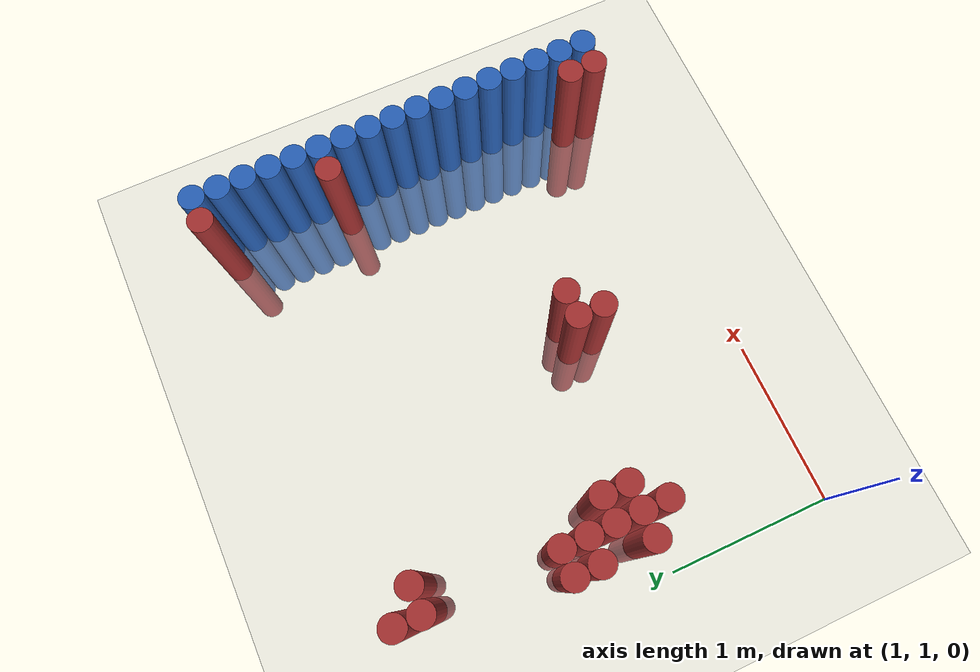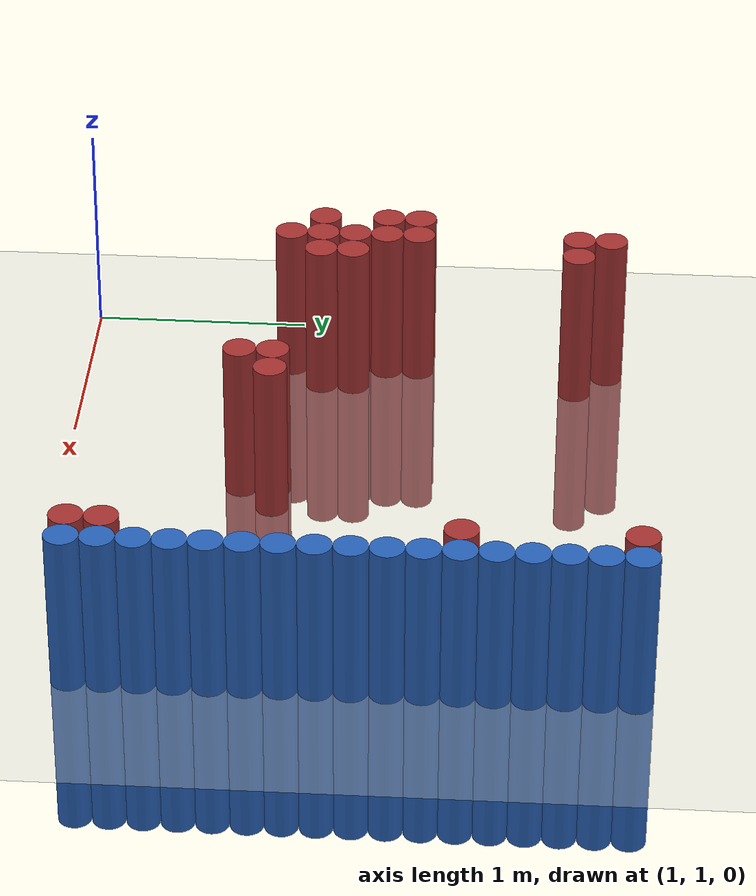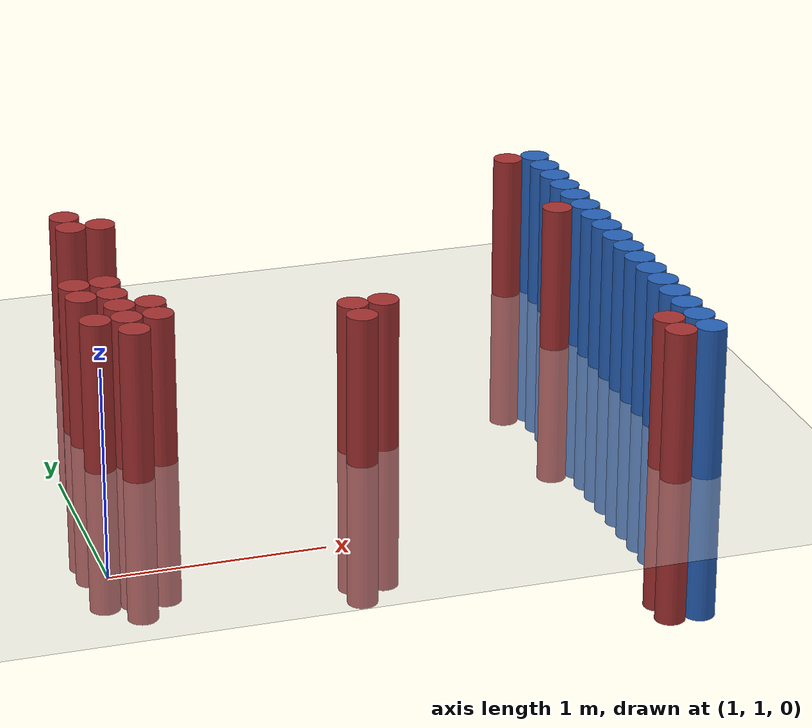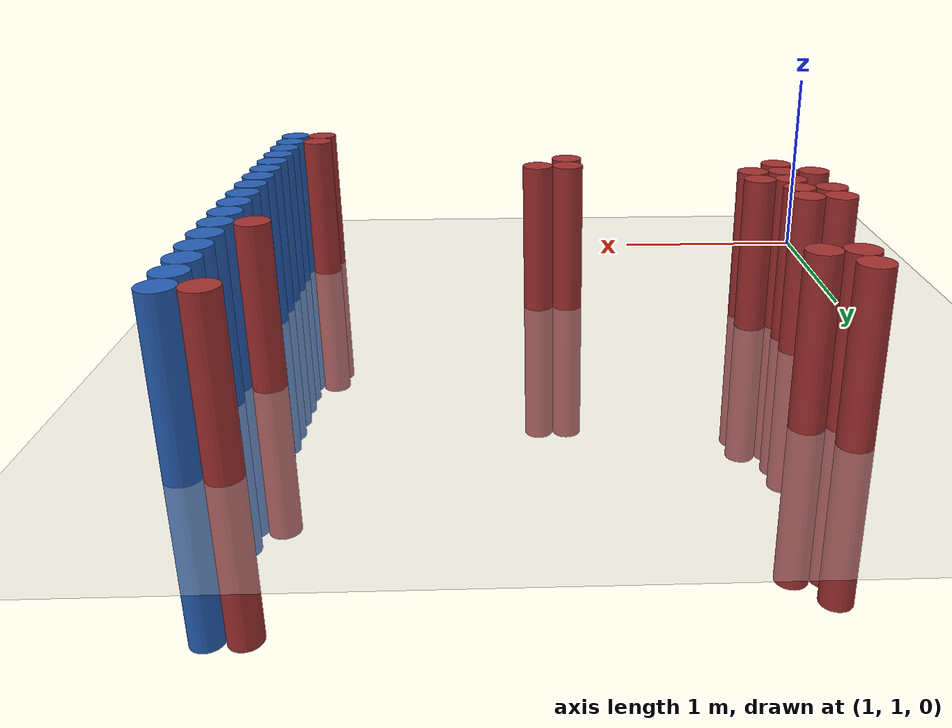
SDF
<sdf version="1.6">
 <world name="default">
  <model name="ground_plane">
   <static>1</static>
   <link name="link">
    <collision name="collision">
     <geometry><plane><normal>0 0 1</normal><size>100 100</size></plane></geometry>
     <surface><friction><ode><mu>100</mu><mu2>50</mu2></ode></friction></surface>
    </collision>
    <visual name="visual">
     <cast_shadows>0</cast_shadows>
     <geometry><plane><normal>0 0 1</normal><size>100 100</size></plane></geometry>
     <material>
      <script><uri>file://media/materials/scripts/gazebo.material</uri><name>Gazebo/Grey</name></script>
     </material>
    </visual>
   </link>
  </model>
  <model name="unit_cylinder_132">
   <static>1</static>
   <pose>3.925000 1.375000 0.000000 0.000000 0.000000 0.000000</pose>
   <link name="link">
    <inertial>
     <mass>1</mass>
     <inertia><ixx>0.145833</ixx><ixy>0</ixy><ixz>0</ixz><iyy>0.145833</iyy><iyz>0</iyz><izz>0.125</izz></inertia>
    </inertial>
    <collision name="collision">
     <geometry><cylinder><radius>0.075000</radius><length>1.5</length></cylinder></geometry>
    </collision>
    <visual name="visual">
     <geometry><cylinder><radius>0.075000</radius><length>1.5</length></cylinder></geometry>
     <material>
      <ambient>0.152000 0.379000 0.720000 1</ambient>
      <diffuse>0.152000 0.379000 0.720000 1</diffuse>
     </material>
     <material>
      <script><name>Gazebo/Grey</name><uri>file://media/materials/scripts/gazebo.material</uri></script>
     </material>
    </visual>
   </link>
  </model>
  <model name="unit_cylinder_134">
   <static>1</static>
   <pose>3.925000 1.525000 0.000000 0.000000 0.000000 0.000000</pose>
   <link name="link">
    <inertial>
     <mass>1</mass>
     <inertia><ixx>0.145833</ixx><ixy>0</ixy><ixz>0</ixz><iyy>0.145833</iyy><iyz>0</iyz><izz>0.125</izz></inertia>
    </inertial>
    <collision name="collision">
     <geometry><cylinder><radius>0.075000</radius><length>1.5</length></cylinder></geometry>
    </collision>
    <visual name="visual">
     <geometry><cylinder><radius>0.075000</radius><length>1.5</length></cylinder></geometry>
     <material>
      <ambient>0.152000 0.379000 0.720000 1</ambient>
      <diffuse>0.152000 0.379000 0.720000 1</diffuse>
     </material>
     <material>
      <script><name>Gazebo/Grey</name><uri>file://media/materials/scripts/gazebo.material</uri></script>
     </material>
    </visual>
   </link>
  </model>
  <model name="unit_cylinder_136">
   <static>1</static>
   <pose>3.925000 1.675000 0.000000 0.000000 0.000000 0.000000</pose>
   <link name="link">
    <inertial>
     <mass>1</mass>
     <inertia><ixx>0.145833</ixx><ixy>0</ixy><ixz>0</ixz><iyy>0.145833</iyy><iyz>0</iyz><izz>0.125</izz></inertia>
    </inertial>
    <collision name="collision">
     <geometry><cylinder><radius>0.075000</radius><length>1.5</length></cylinder></geometry>
    </collision>
    <visual name="visual">
     <geometry><cylinder><radius>0.075000</radius><length>1.5</length></cylinder></geometry>
     <material>
      <ambient>0.152000 0.379000 0.720000 1</ambient>
      <diffuse>0.152000 0.379000 0.720000 1</diffuse>
     </material>
     <material>
      <script><name>Gazebo/Grey</name><uri>file://media/materials/scripts/gazebo.material</uri></script>
     </material>
    </visual>
   </link>
  </model>
  <model name="unit_cylinder_138">
   <static>1</static>
   <pose>3.925000 1.825000 0.000000 0.000000 0.000000 0.000000</pose>
   <link name="link">
    <inertial>
     <mass>1</mass>
     <inertia><ixx>0.145833</ixx><ixy>0</ixy><ixz>0</ixz><iyy>0.145833</iyy><iyz>0</iyz><izz>0.125</izz></inertia>
    </inertial>
    <collision name="collision">
     <geometry><cylinder><radius>0.075000</radius><length>1.5</length></cylinder></geometry>
    </collision>
    <visual name="visual">
     <geometry><cylinder><radius>0.075000</radius><length>1.5</length></cylinder></geometry>
     <material>
      <ambient>0.152000 0.379000 0.720000 1</ambient>
      <diffuse>0.152000 0.379000 0.720000 1</diffuse>
     </material>
     <material>
      <script><name>Gazebo/Grey</name><uri>file://media/materials/scripts/gazebo.material</uri></script>
     </material>
    </visual>
   </link>
  </model>
  <model name="unit_cylinder_140">
   <static>1</static>
   <pose>3.925000 1.975000 0.000000 0.000000 0.000000 0.000000</pose>
   <link name="link">
    <inertial>
     <mass>1</mass>
     <inertia><ixx>0.145833</ixx><ixy>0</ixy><ixz>0</ixz><iyy>0.145833</iyy><iyz>0</iyz><izz>0.125</izz></inertia>
    </inertial>
    <collision name="collision">
     <geometry><cylinder><radius>0.075000</radius><length>1.5</length></cylinder></geometry>
    </collision>
    <visual name="visual">
     <geometry><cylinder><radius>0.075000</radius><length>1.5</length></cylinder></geometry>
     <material>
      <ambient>0.152000 0.379000 0.720000 1</ambient>
      <diffuse>0.152000 0.379000 0.720000 1</diffuse>
     </material>
     <material>
      <script><name>Gazebo/Grey</name><uri>file://media/materials/scripts/gazebo.material</uri></script>
     </material>
    </visual>
   </link>
  </model>
  <model name="unit_cylinder_142">
   <static>1</static>
   <pose>3.925000 2.125000 0.000000 0.000000 0.000000 0.000000</pose>
   <link name="link">
    <inertial>
     <mass>1</mass>
     <inertia><ixx>0.145833</ixx><ixy>0</ixy><ixz>0</ixz><iyy>0.145833</iyy><iyz>0</iyz><izz>0.125</izz></inertia>
    </inertial>
    <collision name="collision">
     <geometry><cylinder><radius>0.075000</radius><length>1.5</length></cylinder></geometry>
    </collision>
    <visual name="visual">
     <geometry><cylinder><radius>0.075000</radius><length>1.5</length></cylinder></geometry>
     <material>
      <ambient>0.152000 0.379000 0.720000 1</ambient>
      <diffuse>0.152000 0.379000 0.720000 1</diffuse>
     </material>
     <material>
      <script><name>Gazebo/Grey</name><uri>file://media/materials/scripts/gazebo.material</uri></script>
     </material>
    </visual>
   </link>
  </model>
  <model name="unit_cylinder_144">
   <static>1</static>
   <pose>3.925000 2.275000 0.000000 0.000000 0.000000 0.000000</pose>
   <link name="link">
    <inertial>
     <mass>1</mass>
     <inertia><ixx>0.145833</ixx><ixy>0</ixy><ixz>0</ixz><iyy>0.145833</iyy><iyz>0</iyz><izz>0.125</izz></inertia>
    </inertial>
    <collision name="collision">
     <geometry><cylinder><radius>0.075000</radius><length>1.5</length></cylinder></geometry>
    </collision>
    <visual name="visual">
     <geometry><cylinder><radius>0.075000</radius><length>1.5</length></cylinder></geometry>
     <material>
      <ambient>0.152000 0.379000 0.720000 1</ambient>
      <diffuse>0.152000 0.379000 0.720000 1</diffuse>
     </material>
     <material>
      <script><name>Gazebo/Grey</name><uri>file://media/materials/scripts/gazebo.material</uri></script>
     </material>
    </visual>
   </link>
  </model>
  <model name="unit_cylinder_146">
   <static>1</static>
   <pose>3.925000 2.425000 0.000000 0.000000 0.000000 0.000000</pose>
   <link name="link">
    <inertial>
     <mass>1</mass>
     <inertia><ixx>0.145833</ixx><ixy>0</ixy><ixz>0</ixz><iyy>0.145833</iyy><iyz>0</iyz><izz>0.125</izz></inertia>
    </inertial>
    <collision name="collision">
     <geometry><cylinder><radius>0.075000</radius><length>1.5</length></cylinder></geometry>
    </collision>
    <visual name="visual">
     <geometry><cylinder><radius>0.075000</radius><length>1.5</length></cylinder></geometry>
     <material>
      <ambient>0.152000 0.379000 0.720000 1</ambient>
      <diffuse>0.152000 0.379000 0.720000 1</diffuse>
     </material>
     <material>
      <script><name>Gazebo/Grey</name><uri>file://media/materials/scripts/gazebo.material</uri></script>
     </material>
    </visual>
   </link>
  </model>
  <model name="unit_cylinder_148">
   <static>1</static>
   <pose>3.925000 2.575000 0.000000 0.000000 0.000000 0.000000</pose>
   <link name="link">
    <inertial>
     <mass>1</mass>
     <inertia><ixx>0.145833</ixx><ixy>0</ixy><ixz>0</ixz><iyy>0.145833</iyy><iyz>0</iyz><izz>0.125</izz></inertia>
    </inertial>
    <collision name="collision">
     <geometry><cylinder><radius>0.075000</radius><length>1.5</length></cylinder></geometry>
    </collision>
    <visual name="visual">
     <geometry><cylinder><radius>0.075000</radius><length>1.5</length></cylinder></geometry>
     <material>
      <ambient>0.152000 0.379000 0.720000 1</ambient>
      <diffuse>0.152000 0.379000 0.720000 1</diffuse>
     </material>
     <material>
      <script><name>Gazebo/Grey</name><uri>file://media/materials/scripts/gazebo.material</uri></script>
     </material>
    </visual>
   </link>
  </model>
  <model name="unit_cylinder_150">
   <static>1</static>
   <pose>3.925000 2.725000 0.000000 0.000000 0.000000 0.000000</pose>
   <link name="link">
    <inertial>
     <mass>1</mass>
     <inertia><ixx>0.145833</ixx><ixy>0</ixy><ixz>0</ixz><iyy>0.145833</iyy><iyz>0</iyz><izz>0.125</izz></inertia>
    </inertial>
    <collision name="collision">
     <geometry><cylinder><radius>0.075000</radius><length>1.5</length></cylinder></geometry>
    </collision>
    <visual name="visual">
     <geometry><cylinder><radius>0.075000</radius><length>1.5</length></cylinder></geometry>
     <material>
      <ambient>0.152000 0.379000 0.720000 1</ambient>
      <diffuse>0.152000 0.379000 0.720000 1</diffuse>
     </material>
     <material>
      <script><name>Gazebo/Grey</name><uri>file://media/materials/scripts/gazebo.material</uri></script>
     </material>
    </visual>
   </link>
  </model>
  <model name="unit_cylinder_152">
   <static>1</static>
   <pose>3.925000 2.875000 0.000000 0.000000 0.000000 0.000000</pose>
   <link name="link">
    <inertial>
     <mass>1</mass>
     <inertia><ixx>0.145833</ixx><ixy>0</ixy><ixz>0</ixz><iyy>0.145833</iyy><iyz>0</iyz><izz>0.125</izz></inertia>
    </inertial>
    <collision name="collision">
     <geometry><cylinder><radius>0.075000</radius><length>1.5</length></cylinder></geometry>
    </collision>
    <visual name="visual">
     <geometry><cylinder><radius>0.075000</radius><length>1.5</length></cylinder></geometry>
     <material>
      <ambient>0.152000 0.379000 0.720000 1</ambient>
      <diffuse>0.152000 0.379000 0.720000 1</diffuse>
     </material>
     <material>
      <script><name>Gazebo/Grey</name><uri>file://media/materials/scripts/gazebo.material</uri></script>
     </material>
    </visual>
   </link>
  </model>
  <model name="unit_cylinder_154">
   <static>1</static>
   <pose>3.925000 3.025000 0.000000 0.000000 0.000000 0.000000</pose>
   <link name="link">
    <inertial>
     <mass>1</mass>
     <inertia><ixx>0.145833</ixx><ixy>0</ixy><ixz>0</ixz><iyy>0.145833</iyy><iyz>0</iyz><izz>0.125</izz></inertia>
    </inertial>
    <collision name="collision">
     <geometry><cylinder><radius>0.075000</radius><length>1.5</length></cylinder></geometry>
    </collision>
    <visual name="visual">
     <geometry><cylinder><radius>0.075000</radius><length>1.5</length></cylinder></geometry>
     <material>
      <ambient>0.152000 0.379000 0.720000 1</ambient>
      <diffuse>0.152000 0.379000 0.720000 1</diffuse>
     </material>
     <material>
      <script><name>Gazebo/Grey</name><uri>file://media/materials/scripts/gazebo.material</uri></script>
     </material>
    </visual>
   </link>
  </model>
  <model name="unit_cylinder_156">
   <static>1</static>
   <pose>3.925000 3.175000 0.000000 0.000000 0.000000 0.000000</pose>
   <link name="link">
    <inertial>
     <mass>1</mass>
     <inertia><ixx>0.145833</ixx><ixy>0</ixy><ixz>0</ixz><iyy>0.145833</iyy><iyz>0</iyz><izz>0.125</izz></inertia>
    </inertial>
    <collision name="collision">
     <geometry><cylinder><radius>0.075000</radius><length>1.5</length></cylinder></geometry>
    </collision>
    <visual name="visual">
     <geometry><cylinder><radius>0.075000</radius><length>1.5</length></cylinder></geometry>
     <material>
      <ambient>0.152000 0.379000 0.720000 1</ambient>
      <diffuse>0.152000 0.379000 0.720000 1</diffuse>
     </material>
     <material>
      <script><name>Gazebo/Grey</name><uri>file://media/materials/scripts/gazebo.material</uri></script>
     </material>
    </visual>
   </link>
  </model>
  <model name="unit_cylinder_158">
   <static>1</static>
   <pose>3.925000 3.325000 0.000000 0.000000 0.000000 0.000000</pose>
   <link name="link">
    <inertial>
     <mass>1</mass>
     <inertia><ixx>0.145833</ixx><ixy>0</ixy><ixz>0</ixz><iyy>0.145833</iyy><iyz>0</iyz><izz>0.125</izz></inertia>
    </inertial>
    <collision name="collision">
     <geometry><cylinder><radius>0.075000</radius><length>1.5</length></cylinder></geometry>
    </collision>
    <visual name="visual">
     <geometry><cylinder><radius>0.075000</radius><length>1.5</length></cylinder></geometry>
     <material>
      <ambient>0.152000 0.379000 0.720000 1</ambient>
      <diffuse>0.152000 0.379000 0.720000 1</diffuse>
     </material>
     <material>
      <script><name>Gazebo/Grey</name><uri>file://media/materials/scripts/gazebo.material</uri></script>
     </material>
    </visual>
   </link>
  </model>
  <model name="unit_cylinder_160">
   <static>1</static>
   <pose>3.925000 3.475000 0.000000 0.000000 0.000000 0.000000</pose>
   <link name="link">
    <inertial>
     <mass>1</mass>
     <inertia><ixx>0.145833</ixx><ixy>0</ixy><ixz>0</ixz><iyy>0.145833</iyy><iyz>0</iyz><izz>0.125</izz></inertia>
    </inertial>
    <collision name="collision">
     <geometry><cylinder><radius>0.075000</radius><length>1.5</length></cylinder></geometry>
    </collision>
    <visual name="visual">
     <geometry><cylinder><radius>0.075000</radius><length>1.5</length></cylinder></geometry>
     <material>
      <ambient>0.152000 0.379000 0.720000 1</ambient>
      <diffuse>0.152000 0.379000 0.720000 1</diffuse>
     </material>
     <material>
      <script><name>Gazebo/Grey</name><uri>file://media/materials/scripts/gazebo.material</uri></script>
     </material>
    </visual>
   </link>
  </model>
  <model name="unit_cylinder_162">
   <static>1</static>
   <pose>3.925000 3.625000 0.000000 0.000000 0.000000 0.000000</pose>
   <link name="link">
    <inertial>
     <mass>1</mass>
     <inertia><ixx>0.145833</ixx><ixy>0</ixy><ixz>0</ixz><iyy>0.145833</iyy><iyz>0</iyz><izz>0.125</izz></inertia>
    </inertial>
    <collision name="collision">
     <geometry><cylinder><radius>0.075000</radius><length>1.5</length></cylinder></geometry>
    </collision>
    <visual name="visual">
     <geometry><cylinder><radius>0.075000</radius><length>1.5</length></cylinder></geometry>
     <material>
      <ambient>0.152000 0.379000 0.720000 1</ambient>
      <diffuse>0.152000 0.379000 0.720000 1</diffuse>
     </material>
     <material>
      <script><name>Gazebo/Grey</name><uri>file://media/materials/scripts/gazebo.material</uri></script>
     </material>
    </visual>
   </link>
  </model>
  <model name="unit_cylinder_406">
   <static>1</static>
   <pose>1.225000 2.125000 0.000000 0.000000 0.000000 0.000000</pose>
   <link name="link">
    <inertial>
     <mass>1</mass>
     <inertia><ixx>0.145833</ixx><ixy>0</ixy><ixz>0</ixz><iyy>0.145833</iyy><iyz>0</iyz><izz>0.125</izz></inertia>
    </inertial>
    <collision name="collision">
     <geometry><cylinder><radius>0.075000</radius><length>1.5</length></cylinder></geometry>
    </collision>
    <visual name="visual">
     <geometry><cylinder><radius>0.075000</radius><length>1.5</length></cylinder></geometry>
     <material>
      <ambient>0.648000 0.192000 0.192000 1</ambient>
      <diffuse>0.648000 0.192000 0.192000 1</diffuse>
     </material>
     <material>
      <script><name>Gazebo/Grey</name><uri>file://media/materials/scripts/gazebo.material</uri></script>
     </material>
    </visual>
   </link>
  </model>
  <model name="unit_cylinder_407">
   <static>1</static>
   <pose>1.225000 2.425000 0.000000 0.000000 0.000000 0.000000</pose>
   <link name="link">
    <inertial>
     <mass>1</mass>
     <inertia><ixx>0.145833</ixx><ixy>0</ixy><ixz>0</ixz><iyy>0.145833</iyy><iyz>0</iyz><izz>0.125</izz></inertia>
    </inertial>
    <collision name="collision">
     <geometry><cylinder><radius>0.075000</radius><length>1.5</length></cylinder></geometry>
    </collision>
    <visual name="visual">
     <geometry><cylinder><radius>0.075000</radius><length>1.5</length></cylinder></geometry>
     <material>
      <ambient>0.648000 0.192000 0.192000 1</ambient>
      <diffuse>0.648000 0.192000 0.192000 1</diffuse>
     </material>
     <material>
      <script><name>Gazebo/Grey</name><uri>file://media/materials/scripts/gazebo.material</uri></script>
     </material>
    </visual>
   </link>
  </model>
  <model name="unit_cylinder_408">
   <static>1</static>
   <pose>1.225000 2.575000 0.000000 0.000000 0.000000 0.000000</pose>
   <link name="link">
    <inertial>
     <mass>1</mass>
     <inertia><ixx>0.145833</ixx><ixy>0</ixy><ixz>0</ixz><iyy>0.145833</iyy><iyz>0</iyz><izz>0.125</izz></inertia>
    </inertial>
    <collision name="collision">
     <geometry><cylinder><radius>0.075000</radius><length>1.5</length></cylinder></geometry>
    </collision>
    <visual name="visual">
     <geometry><cylinder><radius>0.075000</radius><length>1.5</length></cylinder></geometry>
     <material>
      <ambient>0.648000 0.192000 0.192000 1</ambient>
      <diffuse>0.648000 0.192000 0.192000 1</diffuse>
     </material>
     <material>
      <script><name>Gazebo/Grey</name><uri>file://media/materials/scripts/gazebo.material</uri></script>
     </material>
    </visual>
   </link>
  </model>
  <model name="unit_cylinder_410">
   <static>1</static>
   <pose>1.375000 1.975000 0.000000 0.000000 0.000000 0.000000</pose>
   <link name="link">
    <inertial>
     <mass>1</mass>
     <inertia><ixx>0.145833</ixx><ixy>0</ixy><ixz>0</ixz><iyy>0.145833</iyy><iyz>0</iyz><izz>0.125</izz></inertia>
    </inertial>
    <collision name="collision">
     <geometry><cylinder><radius>0.075000</radius><length>1.5</length></cylinder></geometry>
    </collision>
    <visual name="visual">
     <geometry><cylinder><radius>0.075000</radius><length>1.5</length></cylinder></geometry>
     <material>
      <ambient>0.648000 0.192000 0.192000 1</ambient>
      <diffuse>0.648000 0.192000 0.192000 1</diffuse>
     </material>
     <material>
      <script><name>Gazebo/Grey</name><uri>file://media/materials/scripts/gazebo.material</uri></script>
     </material>
    </visual>
   </link>
  </model>
  <model name="unit_cylinder_411">
   <static>1</static>
   <pose>1.375000 2.125000 0.000000 0.000000 0.000000 0.000000</pose>
   <link name="link">
    <inertial>
     <mass>1</mass>
     <inertia><ixx>0.145833</ixx><ixy>0</ixy><ixz>0</ixz><iyy>0.145833</iyy><iyz>0</iyz><izz>0.125</izz></inertia>
    </inertial>
    <collision name="collision">
     <geometry><cylinder><radius>0.075000</radius><length>1.5</length></cylinder></geometry>
    </collision>
    <visual name="visual">
     <geometry><cylinder><radius>0.075000</radius><length>1.5</length></cylinder></geometry>
     <material>
      <ambient>0.648000 0.192000 0.192000 1</ambient>
      <diffuse>0.648000 0.192000 0.192000 1</diffuse>
     </material>
     <material>
      <script><name>Gazebo/Grey</name><uri>file://media/materials/scripts/gazebo.material</uri></script>
     </material>
    </visual>
   </link>
  </model>
  <model name="unit_cylinder_412">
   <static>1</static>
   <pose>1.375000 2.275000 0.000000 0.000000 0.000000 0.000000</pose>
   <link name="link">
    <inertial>
     <mass>1</mass>
     <inertia><ixx>0.145833</ixx><ixy>0</ixy><ixz>0</ixz><iyy>0.145833</iyy><iyz>0</iyz><izz>0.125</izz></inertia>
    </inertial>
    <collision name="collision">
     <geometry><cylinder><radius>0.075000</radius><length>1.5</length></cylinder></geometry>
    </collision>
    <visual name="visual">
     <geometry><cylinder><radius>0.075000</radius><length>1.5</length></cylinder></geometry>
     <material>
      <ambient>0.648000 0.192000 0.192000 1</ambient>
      <diffuse>0.648000 0.192000 0.192000 1</diffuse>
     </material>
     <material>
      <script><name>Gazebo/Grey</name><uri>file://media/materials/scripts/gazebo.material</uri></script>
     </material>
    </visual>
   </link>
  </model>
  <model name="unit_cylinder_413">
   <static>1</static>
   <pose>1.375000 2.425000 0.000000 0.000000 0.000000 0.000000</pose>
   <link name="link">
    <inertial>
     <mass>1</mass>
     <inertia><ixx>0.145833</ixx><ixy>0</ixy><ixz>0</ixz><iyy>0.145833</iyy><iyz>0</iyz><izz>0.125</izz></inertia>
    </inertial>
    <collision name="collision">
     <geometry><cylinder><radius>0.075000</radius><length>1.5</length></cylinder></geometry>
    </collision>
    <visual name="visual">
     <geometry><cylinder><radius>0.075000</radius><length>1.5</length></cylinder></geometry>
     <material>
      <ambient>0.648000 0.192000 0.192000 1</ambient>
      <diffuse>0.648000 0.192000 0.192000 1</diffuse>
     </material>
     <material>
      <script><name>Gazebo/Grey</name><uri>file://media/materials/scripts/gazebo.material</uri></script>
     </material>
    </visual>
   </link>
  </model>
  <model name="unit_cylinder_414">
   <static>1</static>
   <pose>1.375000 2.575000 0.000000 0.000000 0.000000 0.000000</pose>
   <link name="link">
    <inertial>
     <mass>1</mass>
     <inertia><ixx>0.145833</ixx><ixy>0</ixy><ixz>0</ixz><iyy>0.145833</iyy><iyz>0</iyz><izz>0.125</izz></inertia>
    </inertial>
    <collision name="collision">
     <geometry><cylinder><radius>0.075000</radius><length>1.5</length></cylinder></geometry>
    </collision>
    <visual name="visual">
     <geometry><cylinder><radius>0.075000</radius><length>1.5</length></cylinder></geometry>
     <material>
      <ambient>0.648000 0.192000 0.192000 1</ambient>
      <diffuse>0.648000 0.192000 0.192000 1</diffuse>
     </material>
     <material>
      <script><name>Gazebo/Grey</name><uri>file://media/materials/scripts/gazebo.material</uri></script>
     </material>
    </visual>
   </link>
  </model>
  <model name="unit_cylinder_415">
   <static>1</static>
   <pose>1.375000 3.325000 0.000000 0.000000 0.000000 0.000000</pose>
   <link name="link">
    <inertial>
     <mass>1</mass>
     <inertia><ixx>0.145833</ixx><ixy>0</ixy><ixz>0</ixz><iyy>0.145833</iyy><iyz>0</iyz><izz>0.125</izz></inertia>
    </inertial>
    <collision name="collision">
     <geometry><cylinder><radius>0.075000</radius><length>1.5</length></cylinder></geometry>
    </collision>
    <visual name="visual">
     <geometry><cylinder><radius>0.075000</radius><length>1.5</length></cylinder></geometry>
     <material>
      <ambient>0.648000 0.192000 0.192000 1</ambient>
      <diffuse>0.648000 0.192000 0.192000 1</diffuse>
     </material>
     <material>
      <script><name>Gazebo/Grey</name><uri>file://media/materials/scripts/gazebo.material</uri></script>
     </material>
    </visual>
   </link>
  </model>
  <model name="unit_cylinder_416">
   <static>1</static>
   <pose>1.375000 3.475000 0.000000 0.000000 0.000000 0.000000</pose>
   <link name="link">
    <inertial>
     <mass>1</mass>
     <inertia><ixx>0.145833</ixx><ixy>0</ixy><ixz>0</ixz><iyy>0.145833</iyy><iyz>0</iyz><izz>0.125</izz></inertia>
    </inertial>
    <collision name="collision">
     <geometry><cylinder><radius>0.075000</radius><length>1.5</length></cylinder></geometry>
    </collision>
    <visual name="visual">
     <geometry><cylinder><radius>0.075000</radius><length>1.5</length></cylinder></geometry>
     <material>
      <ambient>0.648000 0.192000 0.192000 1</ambient>
      <diffuse>0.648000 0.192000 0.192000 1</diffuse>
     </material>
     <material>
      <script><name>Gazebo/Grey</name><uri>file://media/materials/scripts/gazebo.material</uri></script>
     </material>
    </visual>
   </link>
  </model>
  <model name="unit_cylinder_419">
   <static>1</static>
   <pose>1.525000 2.125000 0.000000 0.000000 0.000000 0.000000</pose>
   <link name="link">
    <inertial>
     <mass>1</mass>
     <inertia><ixx>0.145833</ixx><ixy>0</ixy><ixz>0</ixz><iyy>0.145833</iyy><iyz>0</iyz><izz>0.125</izz></inertia>
    </inertial>
    <collision name="collision">
     <geometry><cylinder><radius>0.075000</radius><length>1.5</length></cylinder></geometry>
    </collision>
    <visual name="visual">
     <geometry><cylinder><radius>0.075000</radius><length>1.5</length></cylinder></geometry>
     <material>
      <ambient>0.648000 0.192000 0.192000 1</ambient>
      <diffuse>0.648000 0.192000 0.192000 1</diffuse>
     </material>
     <material>
      <script><name>Gazebo/Grey</name><uri>file://media/materials/scripts/gazebo.material</uri></script>
     </material>
    </visual>
   </link>
  </model>
  <model name="unit_cylinder_420">
   <static>1</static>
   <pose>1.525000 2.275000 0.000000 0.000000 0.000000 0.000000</pose>
   <link name="link">
    <inertial>
     <mass>1</mass>
     <inertia><ixx>0.145833</ixx><ixy>0</ixy><ixz>0</ixz><iyy>0.145833</iyy><iyz>0</iyz><izz>0.125</izz></inertia>
    </inertial>
    <collision name="collision">
     <geometry><cylinder><radius>0.075000</radius><length>1.5</length></cylinder></geometry>
    </collision>
    <visual name="visual">
     <geometry><cylinder><radius>0.075000</radius><length>1.5</length></cylinder></geometry>
     <material>
      <ambient>0.648000 0.192000 0.192000 1</ambient>
      <diffuse>0.648000 0.192000 0.192000 1</diffuse>
     </material>
     <material>
      <script><name>Gazebo/Grey</name><uri>file://media/materials/scripts/gazebo.material</uri></script>
     </material>
    </visual>
   </link>
  </model>
  <model name="unit_cylinder_421">
   <static>1</static>
   <pose>1.525000 3.325000 0.000000 0.000000 0.000000 0.000000</pose>
   <link name="link">
    <inertial>
     <mass>1</mass>
     <inertia><ixx>0.145833</ixx><ixy>0</ixy><ixz>0</ixz><iyy>0.145833</iyy><iyz>0</iyz><izz>0.125</izz></inertia>
    </inertial>
    <collision name="collision">
     <geometry><cylinder><radius>0.075000</radius><length>1.5</length></cylinder></geometry>
    </collision>
    <visual name="visual">
     <geometry><cylinder><radius>0.075000</radius><length>1.5</length></cylinder></geometry>
     <material>
      <ambient>0.648000 0.192000 0.192000 1</ambient>
      <diffuse>0.648000 0.192000 0.192000 1</diffuse>
     </material>
     <material>
      <script><name>Gazebo/Grey</name><uri>file://media/materials/scripts/gazebo.material</uri></script>
     </material>
    </visual>
   </link>
  </model>
  <model name="unit_cylinder_437">
   <static>1</static>
   <pose>2.425000 1.825000 0.000000 0.000000 0.000000 0.000000</pose>
   <link name="link">
    <inertial>
     <mass>1</mass>
     <inertia><ixx>0.145833</ixx><ixy>0</ixy><ixz>0</ixz><iyy>0.145833</iyy><iyz>0</iyz><izz>0.125</izz></inertia>
    </inertial>
    <collision name="collision">
     <geometry><cylinder><radius>0.075000</radius><length>1.5</length></cylinder></geometry>
    </collision>
    <visual name="visual">
     <geometry><cylinder><radius>0.075000</radius><length>1.5</length></cylinder></geometry>
     <material>
      <ambient>0.648000 0.192000 0.192000 1</ambient>
      <diffuse>0.648000 0.192000 0.192000 1</diffuse>
     </material>
     <material>
      <script><name>Gazebo/Grey</name><uri>file://media/materials/scripts/gazebo.material</uri></script>
     </material>
    </visual>
   </link>
  </model>
  <model name="unit_cylinder_438">
   <static>1</static>
   <pose>2.425000 1.975000 0.000000 0.000000 0.000000 0.000000</pose>
   <link name="link">
    <inertial>
     <mass>1</mass>
     <inertia><ixx>0.145833</ixx><ixy>0</ixy><ixz>0</ixz><iyy>0.145833</iyy><iyz>0</iyz><izz>0.125</izz></inertia>
    </inertial>
    <collision name="collision">
     <geometry><cylinder><radius>0.075000</radius><length>1.5</length></cylinder></geometry>
    </collision>
    <visual name="visual">
     <geometry><cylinder><radius>0.075000</radius><length>1.5</length></cylinder></geometry>
     <material>
      <ambient>0.648000 0.192000 0.192000 1</ambient>
      <diffuse>0.648000 0.192000 0.192000 1</diffuse>
     </material>
     <material>
      <script><name>Gazebo/Grey</name><uri>file://media/materials/scripts/gazebo.material</uri></script>
     </material>
    </visual>
   </link>
  </model>
  <model name="unit_cylinder_439">
   <static>1</static>
   <pose>2.575000 1.975000 0.000000 0.000000 0.000000 0.000000</pose>
   <link name="link">
    <inertial>
     <mass>1</mass>
     <inertia><ixx>0.145833</ixx><ixy>0</ixy><ixz>0</ixz><iyy>0.145833</iyy><iyz>0</iyz><izz>0.125</izz></inertia>
    </inertial>
    <collision name="collision">
     <geometry><cylinder><radius>0.075000</radius><length>1.5</length></cylinder></geometry>
    </collision>
    <visual name="visual">
     <geometry><cylinder><radius>0.075000</radius><length>1.5</length></cylinder></geometry>
     <material>
      <ambient>0.648000 0.192000 0.192000 1</ambient>
      <diffuse>0.648000 0.192000 0.192000 1</diffuse>
     </material>
     <material>
      <script><name>Gazebo/Grey</name><uri>file://media/materials/scripts/gazebo.material</uri></script>
     </material>
    </visual>
   </link>
  </model>
  <model name="unit_cylinder_468">
   <static>1</static>
   <pose>3.775000 1.225000 0.000000 0.000000 0.000000 0.000000</pose>
   <link name="link">
    <inertial>
     <mass>1</mass>
     <inertia><ixx>0.145833</ixx><ixy>0</ixy><ixz>0</ixz><iyy>0.145833</iyy><iyz>0</iyz><izz>0.125</izz></inertia>
    </inertial>
    <collision name="collision">
     <geometry><cylinder><radius>0.075000</radius><length>1.5</length></cylinder></geometry>
    </collision>
    <visual name="visual">
     <geometry><cylinder><radius>0.075000</radius><length>1.5</length></cylinder></geometry>
     <material>
      <ambient>0.648000 0.192000 0.192000 1</ambient>
      <diffuse>0.648000 0.192000 0.192000 1</diffuse>
     </material>
     <material>
      <script><name>Gazebo/Grey</name><uri>file://media/materials/scripts/gazebo.material</uri></script>
     </material>
    </visual>
   </link>
  </model>
  <model name="unit_cylinder_469">
   <static>1</static>
   <pose>3.775000 1.375000 0.000000 0.000000 0.000000 0.000000</pose>
   <link name="link">
    <inertial>
     <mass>1</mass>
     <inertia><ixx>0.145833</ixx><ixy>0</ixy><ixz>0</ixz><iyy>0.145833</iyy><iyz>0</iyz><izz>0.125</izz></inertia>
    </inertial>
    <collision name="collision">
     <geometry><cylinder><radius>0.075000</radius><length>1.5</length></cylinder></geometry>
    </collision>
    <visual name="visual">
     <geometry><cylinder><radius>0.075000</radius><length>1.5</length></cylinder></geometry>
     <material>
      <ambient>0.648000 0.192000 0.192000 1</ambient>
      <diffuse>0.648000 0.192000 0.192000 1</diffuse>
     </material>
     <material>
      <script><name>Gazebo/Grey</name><uri>file://media/materials/scripts/gazebo.material</uri></script>
     </material>
    </visual>
   </link>
  </model>
  <model name="unit_cylinder_470">
   <static>1</static>
   <pose>3.775000 2.875000 0.000000 0.000000 0.000000 0.000000</pose>
   <link name="link">
    <inertial>
     <mass>1</mass>
     <inertia><ixx>0.145833</ixx><ixy>0</ixy><ixz>0</ixz><iyy>0.145833</iyy><iyz>0</iyz><izz>0.125</izz></inertia>
    </inertial>
    <collision name="collision">
     <geometry><cylinder><radius>0.075000</radius><length>1.5</length></cylinder></geometry>
    </collision>
    <visual name="visual">
     <geometry><cylinder><radius>0.075000</radius><length>1.5</length></cylinder></geometry>
     <material>
      <ambient>0.648000 0.192000 0.192000 1</ambient>
      <diffuse>0.648000 0.192000 0.192000 1</diffuse>
     </material>
     <material>
      <script><name>Gazebo/Grey</name><uri>file://media/materials/scripts/gazebo.material</uri></script>
     </material>
    </visual>
   </link>
  </model>
  <model name="unit_cylinder_471">
   <static>1</static>
   <pose>3.775000 3.625000 0.000000 0.000000 0.000000 0.000000</pose>
   <link name="link">
    <inertial>
     <mass>1</mass>
     <inertia><ixx>0.145833</ixx><ixy>0</ixy><ixz>0</ixz><iyy>0.145833</iyy><iyz>0</iyz><izz>0.125</izz></inertia>
    </inertial>
    <collision name="collision">
     <geometry><cylinder><radius>0.075000</radius><length>1.5</length></cylinder></geometry>
    </collision>
    <visual name="visual">
     <geometry><cylinder><radius>0.075000</radius><length>1.5</length></cylinder></geometry>
     <material>
      <ambient>0.648000 0.192000 0.192000 1</ambient>
      <diffuse>0.648000 0.192000 0.192000 1</diffuse>
     </material>
     <material>
      <script><name>Gazebo/Grey</name><uri>file://media/materials/scripts/gazebo.material</uri></script>
     </material>
    </visual>
   </link>
  </model>
  <model name="unit_cylinder_500">
   <static>1</static>
   <pose>3.925000 1.225000 0.000000 0.000000 0.000000 0.000000</pose>
   <link name="link">
    <inertial>
     <mass>1</mass>
     <inertia><ixx>0.145833</ixx><ixy>0</ixy><ixz>0</ixz><iyy>0.145833</iyy><iyz>0</iyz><izz>0.125</izz></inertia>
    </inertial>
    <collision name="collision">
     <geometry><cylinder><radius>0.075000</radius><length>1.5</length></cylinder></geometry>
    </collision>
    <visual name="visual">
     <geometry><cylinder><radius>0.075000</radius><length>1.5</length></cylinder></geometry>
     <material>
      <ambient>0.152000 0.379000 0.720000 1</ambient>
      <diffuse>0.152000 0.379000 0.720000 1</diffuse>
     </material>
     <material>
      <script><name>Gazebo/Grey</name><uri>file://media/materials/scripts/gazebo.material</uri></script>
     </material>
    </visual>
   </link>
  </model>
  <model name="unit_cylinder_501">
   <static>1</static>
   <pose>3.925000 1.375000 0.000000 0.000000 0.000000 0.000000</pose>
   <link name="link">
    <inertial>
     <mass>1</mass>
     <inertia><ixx>0.145833</ixx><ixy>0</ixy><ixz>0</ixz><iyy>0.145833</iyy><iyz>0</iyz><izz>0.125</izz></inertia>
    </inertial>
    <collision name="collision">
     <geometry><cylinder><radius>0.075000</radius><length>1.5</length></cylinder></geometry>
    </collision>
    <visual name="visual">
     <geometry><cylinder><radius>0.075000</radius><length>1.5</length></cylinder></geometry>
     <material>
      <ambient>0.152000 0.379000 0.720000 1</ambient>
      <diffuse>0.152000 0.379000 0.720000 1</diffuse>
     </material>
     <material>
      <script><name>Gazebo/Grey</name><uri>file://media/materials/scripts/gazebo.material</uri></script>
     </material>
    </visual>
   </link>
  </model>
  <model name="unit_cylinder_502">
   <static>1</static>
   <pose>3.925000 1.525000 0.000000 0.000000 0.000000 0.000000</pose>
   <link name="link">
    <inertial>
     <mass>1</mass>
     <inertia><ixx>0.145833</ixx><ixy>0</ixy><ixz>0</ixz><iyy>0.145833</iyy><iyz>0</iyz><izz>0.125</izz></inertia>
    </inertial>
    <collision name="collision">
     <geometry><cylinder><radius>0.075000</radius><length>1.5</length></cylinder></geometry>
    </collision>
    <visual name="visual">
     <geometry><cylinder><radius>0.075000</radius><length>1.5</length></cylinder></geometry>
     <material>
      <ambient>0.152000 0.379000 0.720000 1</ambient>
      <diffuse>0.152000 0.379000 0.720000 1</diffuse>
     </material>
     <material>
      <script><name>Gazebo/Grey</name><uri>file://media/materials/scripts/gazebo.material</uri></script>
     </material>
    </visual>
   </link>
  </model>
  <model name="unit_cylinder_503">
   <static>1</static>
   <pose>3.925000 1.675000 0.000000 0.000000 0.000000 0.000000</pose>
   <link name="link">
    <inertial>
     <mass>1</mass>
     <inertia><ixx>0.145833</ixx><ixy>0</ixy><ixz>0</ixz><iyy>0.145833</iyy><iyz>0</iyz><izz>0.125</izz></inertia>
    </inertial>
    <collision name="collision">
     <geometry><cylinder><radius>0.075000</radius><length>1.5</length></cylinder></geometry>
    </collision>
    <visual name="visual">
     <geometry><cylinder><radius>0.075000</radius><length>1.5</length></cylinder></geometry>
     <material>
      <ambient>0.152000 0.379000 0.720000 1</ambient>
      <diffuse>0.152000 0.379000 0.720000 1</diffuse>
     </material>
     <material>
      <script><name>Gazebo/Grey</name><uri>file://media/materials/scripts/gazebo.material</uri></script>
     </material>
    </visual>
   </link>
  </model>
  <model name="unit_cylinder_504">
   <static>1</static>
   <pose>3.925000 1.825000 0.000000 0.000000 0.000000 0.000000</pose>
   <link name="link">
    <inertial>
     <mass>1</mass>
     <inertia><ixx>0.145833</ixx><ixy>0</ixy><ixz>0</ixz><iyy>0.145833</iyy><iyz>0</iyz><izz>0.125</izz></inertia>
    </inertial>
    <collision name="collision">
     <geometry><cylinder><radius>0.075000</radius><length>1.5</length></cylinder></geometry>
    </collision>
    <visual name="visual">
     <geometry><cylinder><radius>0.075000</radius><length>1.5</length></cylinder></geometry>
     <material>
      <ambient>0.152000 0.379000 0.720000 1</ambient>
      <diffuse>0.152000 0.379000 0.720000 1</diffuse>
     </material>
     <material>
      <script><name>Gazebo/Grey</name><uri>file://media/materials/scripts/gazebo.material</uri></script>
     </material>
    </visual>
   </link>
  </model>
  <model name="unit_cylinder_505">
   <static>1</static>
   <pose>3.925000 1.975000 0.000000 0.000000 0.000000 0.000000</pose>
   <link name="link">
    <inertial>
     <mass>1</mass>
     <inertia><ixx>0.145833</ixx><ixy>0</ixy><ixz>0</ixz><iyy>0.145833</iyy><iyz>0</iyz><izz>0.125</izz></inertia>
    </inertial>
    <collision name="collision">
     <geometry><cylinder><radius>0.075000</radius><length>1.5</length></cylinder></geometry>
    </collision>
    <visual name="visual">
     <geometry><cylinder><radius>0.075000</radius><length>1.5</length></cylinder></geometry>
     <material>
      <ambient>0.152000 0.379000 0.720000 1</ambient>
      <diffuse>0.152000 0.379000 0.720000 1</diffuse>
     </material>
     <material>
      <script><name>Gazebo/Grey</name><uri>file://media/materials/scripts/gazebo.material</uri></script>
     </material>
    </visual>
   </link>
  </model>
  <model name="unit_cylinder_506">
   <static>1</static>
   <pose>3.925000 2.125000 0.000000 0.000000 0.000000 0.000000</pose>
   <link name="link">
    <inertial>
     <mass>1</mass>
     <inertia><ixx>0.145833</ixx><ixy>0</ixy><ixz>0</ixz><iyy>0.145833</iyy><iyz>0</iyz><izz>0.125</izz></inertia>
    </inertial>
    <collision name="collision">
     <geometry><cylinder><radius>0.075000</radius><length>1.5</length></cylinder></geometry>
    </collision>
    <visual name="visual">
     <geometry><cylinder><radius>0.075000</radius><length>1.5</length></cylinder></geometry>
     <material>
      <ambient>0.152000 0.379000 0.720000 1</ambient>
      <diffuse>0.152000 0.379000 0.720000 1</diffuse>
     </material>
     <material>
      <script><name>Gazebo/Grey</name><uri>file://media/materials/scripts/gazebo.material</uri></script>
     </material>
    </visual>
   </link>
  </model>
  <model name="unit_cylinder_507">
   <static>1</static>
   <pose>3.925000 2.275000 0.000000 0.000000 0.000000 0.000000</pose>
   <link name="link">
    <inertial>
     <mass>1</mass>
     <inertia><ixx>0.145833</ixx><ixy>0</ixy><ixz>0</ixz><iyy>0.145833</iyy><iyz>0</iyz><izz>0.125</izz></inertia>
    </inertial>
    <collision name="collision">
     <geometry><cylinder><radius>0.075000</radius><length>1.5</length></cylinder></geometry>
    </collision>
    <visual name="visual">
     <geometry><cylinder><radius>0.075000</radius><length>1.5</length></cylinder></geometry>
     <material>
      <ambient>0.152000 0.379000 0.720000 1</ambient>
      <diffuse>0.152000 0.379000 0.720000 1</diffuse>
     </material>
     <material>
      <script><name>Gazebo/Grey</name><uri>file://media/materials/scripts/gazebo.material</uri></script>
     </material>
    </visual>
   </link>
  </model>
  <model name="unit_cylinder_508">
   <static>1</static>
   <pose>3.925000 2.425000 0.000000 0.000000 0.000000 0.000000</pose>
   <link name="link">
    <inertial>
     <mass>1</mass>
     <inertia><ixx>0.145833</ixx><ixy>0</ixy><ixz>0</ixz><iyy>0.145833</iyy><iyz>0</iyz><izz>0.125</izz></inertia>
    </inertial>
    <collision name="collision">
     <geometry><cylinder><radius>0.075000</radius><length>1.5</length></cylinder></geometry>
    </collision>
    <visual name="visual">
     <geometry><cylinder><radius>0.075000</radius><length>1.5</length></cylinder></geometry>
     <material>
      <ambient>0.152000 0.379000 0.720000 1</ambient>
      <diffuse>0.152000 0.379000 0.720000 1</diffuse>
     </material>
     <material>
      <script><name>Gazebo/Grey</name><uri>file://media/materials/scripts/gazebo.material</uri></script>
     </material>
    </visual>
   </link>
  </model>
  <model name="unit_cylinder_509">
   <static>1</static>
   <pose>3.925000 2.575000 0.000000 0.000000 0.000000 0.000000</pose>
   <link name="link">
    <inertial>
     <mass>1</mass>
     <inertia><ixx>0.145833</ixx><ixy>0</ixy><ixz>0</ixz><iyy>0.145833</iyy><iyz>0</iyz><izz>0.125</izz></inertia>
    </inertial>
    <collision name="collision">
     <geometry><cylinder><radius>0.075000</radius><length>1.5</length></cylinder></geometry>
    </collision>
    <visual name="visual">
     <geometry><cylinder><radius>0.075000</radius><length>1.5</length></cylinder></geometry>
     <material>
      <ambient>0.152000 0.379000 0.720000 1</ambient>
      <diffuse>0.152000 0.379000 0.720000 1</diffuse>
     </material>
     <material>
      <script><name>Gazebo/Grey</name><uri>file://media/materials/scripts/gazebo.material</uri></script>
     </material>
    </visual>
   </link>
  </model>
  <model name="unit_cylinder_510">
   <static>1</static>
   <pose>3.925000 2.725000 0.000000 0.000000 0.000000 0.000000</pose>
   <link name="link">
    <inertial>
     <mass>1</mass>
     <inertia><ixx>0.145833</ixx><ixy>0</ixy><ixz>0</ixz><iyy>0.145833</iyy><iyz>0</iyz><izz>0.125</izz></inertia>
    </inertial>
    <collision name="collision">
     <geometry><cylinder><radius>0.075000</radius><length>1.5</length></cylinder></geometry>
    </collision>
    <visual name="visual">
     <geometry><cylinder><radius>0.075000</radius><length>1.5</length></cylinder></geometry>
     <material>
      <ambient>0.152000 0.379000 0.720000 1</ambient>
      <diffuse>0.152000 0.379000 0.720000 1</diffuse>
     </material>
     <material>
      <script><name>Gazebo/Grey</name><uri>file://media/materials/scripts/gazebo.material</uri></script>
     </material>
    </visual>
   </link>
  </model>
  <model name="unit_cylinder_511">
   <static>1</static>
   <pose>3.925000 2.875000 0.000000 0.000000 0.000000 0.000000</pose>
   <link name="link">
    <inertial>
     <mass>1</mass>
     <inertia><ixx>0.145833</ixx><ixy>0</ixy><ixz>0</ixz><iyy>0.145833</iyy><iyz>0</iyz><izz>0.125</izz></inertia>
    </inertial>
    <collision name="collision">
     <geometry><cylinder><radius>0.075000</radius><length>1.5</length></cylinder></geometry>
    </collision>
    <visual name="visual">
     <geometry><cylinder><radius>0.075000</radius><length>1.5</length></cylinder></geometry>
     <material>
      <ambient>0.152000 0.379000 0.720000 1</ambient>
      <diffuse>0.152000 0.379000 0.720000 1</diffuse>
     </material>
     <material>
      <script><name>Gazebo/Grey</name><uri>file://media/materials/scripts/gazebo.material</uri></script>
     </material>
    </visual>
   </link>
  </model>
  <model name="unit_cylinder_512">
   <static>1</static>
   <pose>3.925000 3.025000 0.000000 0.000000 0.000000 0.000000</pose>
   <link name="link">
    <inertial>
     <mass>1</mass>
     <inertia><ixx>0.145833</ixx><ixy>0</ixy><ixz>0</ixz><iyy>0.145833</iyy><iyz>0</iyz><izz>0.125</izz></inertia>
    </inertial>
    <collision name="collision">
     <geometry><cylinder><radius>0.075000</radius><length>1.5</length></cylinder></geometry>
    </collision>
    <visual name="visual">
     <geometry><cylinder><radius>0.075000</radius><length>1.5</length></cylinder></geometry>
     <material>
      <ambient>0.152000 0.379000 0.720000 1</ambient>
      <diffuse>0.152000 0.379000 0.720000 1</diffuse>
     </material>
     <material>
      <script><name>Gazebo/Grey</name><uri>file://media/materials/scripts/gazebo.material</uri></script>
     </material>
    </visual>
   </link>
  </model>
  <model name="unit_cylinder_513">
   <static>1</static>
   <pose>3.925000 3.175000 0.000000 0.000000 0.000000 0.000000</pose>
   <link name="link">
    <inertial>
     <mass>1</mass>
     <inertia><ixx>0.145833</ixx><ixy>0</ixy><ixz>0</ixz><iyy>0.145833</iyy><iyz>0</iyz><izz>0.125</izz></inertia>
    </inertial>
    <collision name="collision">
     <geometry><cylinder><radius>0.075000</radius><length>1.5</length></cylinder></geometry>
    </collision>
    <visual name="visual">
     <geometry><cylinder><radius>0.075000</radius><length>1.5</length></cylinder></geometry>
     <material>
      <ambient>0.152000 0.379000 0.720000 1</ambient>
      <diffuse>0.152000 0.379000 0.720000 1</diffuse>
     </material>
     <material>
      <script><name>Gazebo/Grey</name><uri>file://media/materials/scripts/gazebo.material</uri></script>
     </material>
    </visual>
   </link>
  </model>
  <model name="unit_cylinder_514">
   <static>1</static>
   <pose>3.925000 3.325000 0.000000 0.000000 0.000000 0.000000</pose>
   <link name="link">
    <inertial>
     <mass>1</mass>
     <inertia><ixx>0.145833</ixx><ixy>0</ixy><ixz>0</ixz><iyy>0.145833</iyy><iyz>0</iyz><izz>0.125</izz></inertia>
    </inertial>
    <collision name="collision">
     <geometry><cylinder><radius>0.075000</radius><length>1.5</length></cylinder></geometry>
    </collision>
    <visual name="visual">
     <geometry><cylinder><radius>0.075000</radius><length>1.5</length></cylinder></geometry>
     <material>
      <ambient>0.152000 0.379000 0.720000 1</ambient>
      <diffuse>0.152000 0.379000 0.720000 1</diffuse>
     </material>
     <material>
      <script><name>Gazebo/Grey</name><uri>file://media/materials/scripts/gazebo.material</uri></script>
     </material>
    </visual>
   </link>
  </model>
  <model name="unit_cylinder_515">
   <static>1</static>
   <pose>3.925000 3.475000 0.000000 0.000000 0.000000 0.000000</pose>
   <link name="link">
    <inertial>
     <mass>1</mass>
     <inertia><ixx>0.145833</ixx><ixy>0</ixy><ixz>0</ixz><iyy>0.145833</iyy><iyz>0</iyz><izz>0.125</izz></inertia>
    </inertial>
    <collision name="collision">
     <geometry><cylinder><radius>0.075000</radius><length>1.5</length></cylinder></geometry>
    </collision>
    <visual name="visual">
     <geometry><cylinder><radius>0.075000</radius><length>1.5</length></cylinder></geometry>
     <material>
      <ambient>0.152000 0.379000 0.720000 1</ambient>
      <diffuse>0.152000 0.379000 0.720000 1</diffuse>
     </material>
     <material>
      <script><name>Gazebo/Grey</name><uri>file://media/materials/scripts/gazebo.material</uri></script>
     </material>
    </visual>
   </link>
  </model>
  <model name="unit_cylinder_516">
   <static>1</static>
   <pose>3.925000 3.625000 0.000000 0.000000 0.000000 0.000000</pose>
   <link name="link">
    <inertial>
     <mass>1</mass>
     <inertia><ixx>0.145833</ixx><ixy>0</ixy><ixz>0</ixz><iyy>0.145833</iyy><iyz>0</iyz><izz>0.125</izz></inertia>
    </inertial>
    <collision name="collision">
     <geometry><cylinder><radius>0.075000</radius><length>1.5</length></cylinder></geometry>
    </collision>
    <visual name="visual">
     <geometry><cylinder><radius>0.075000</radius><length>1.5</length></cylinder></geometry>
     <material>
      <ambient>0.152000 0.379000 0.720000 1</ambient>
      <diffuse>0.152000 0.379000 0.720000 1</diffuse>
     </material>
     <material>
      <script><name>Gazebo/Grey</name><uri>file://media/materials/scripts/gazebo.material</uri></script>
     </material>
    </visual>
   </link>
  </model>
 </world>
</sdf>
